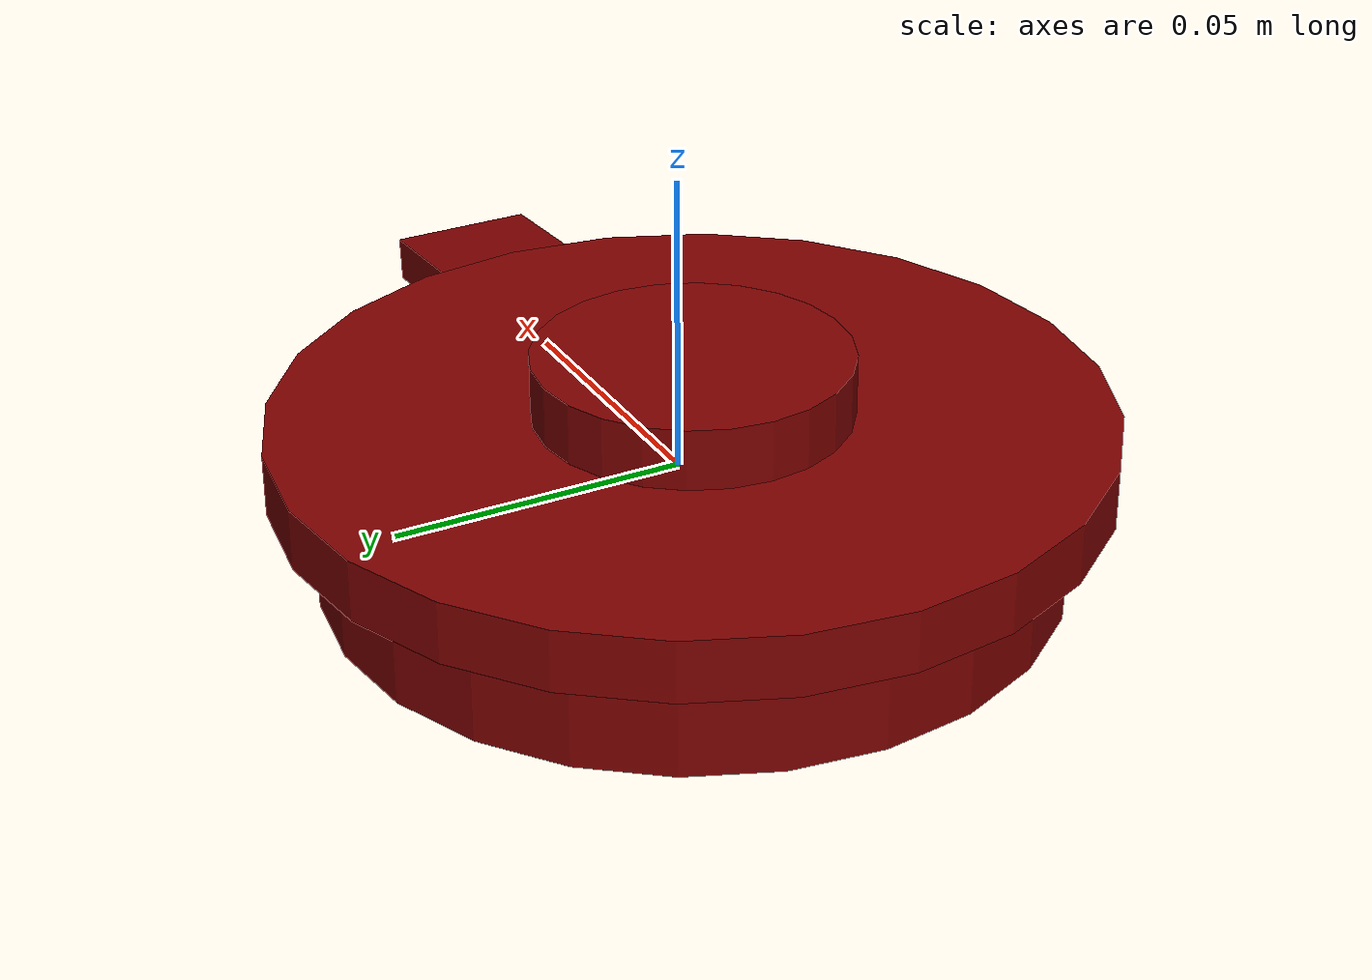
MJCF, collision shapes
<mujoco model="model">
  <option timestep="0.002" gravity="0.0 0.0 -9.81"/>
  <compiler angle="radian"/>
  <asset>
    <texture file="visuals/T_BC001.png" name="lid_material" type="2d"/>
    <material name="lid_material" rgba="1 1 1 1.0" texture="lid_material" shininess="0.4472135901451111" specular="0.3103448502657381"/>
    <mesh file="visuals/lid.obj" name="lid_vis"/>
  </asset>
  <default>
    <default class="visual">
      <geom conaffinity="0" contype="0" group="1" type="mesh"/>
    </default>
    <default class="collision">
      <geom group="0" rgba="0.5 0 0 0.5" solimp="0.95 0.99 0.003" solref="0.003 1"/>
    </default>
    <default class="spawn">
      <geom group="0" rgba="1 1 1 0.5" contype="0" conaffinity="0"/>
      <site group="0" rgba="1 1 1 0.5"/>
    </default>
    <default class="region">
      <geom group="1" conaffinity="0" contype="0" rgba="0 1 0 0"/>
    </default>
  </default>
  <worldbody>
    <body>
      <body name="object">
        <geom mesh="lid_vis" type="mesh" solimp="0.998 0.998 0.001" solref="0.001 1" friction="0.95 0.3 0.1" class="visual" material="lid_material"/>
        <geom class="collision" type="cylinder" pos="-0.004855678318701508 -7.242525191526739e-05 0.0070772560343172475" size="0.06867838650941849 0.005201192107051611" quat="1.0 0.0 0.0 0.0" density="1000.0"/>
        <geom class="collision" type="cylinder" pos="-0.004855678318701508 -7.242525191526739e-05 -0.0068" size="0.0614 0.009" quat="1.0 0.0 0.0 0.0" density="1000.0"/>
        <geom class="collision" name="handle_main" type="cylinder" pos="-0.004855682043991807 -7.242804588299123e-05 0.017411270926895372" size="0.02612263336777687 0.005131117068231106" quat="1.0 0.0 0.0 0.0" density="1000.0"/>
        <geom class="collision" type="box" pos="0.0625184933704512 0.0004950659143783537 0.006737420152130358" size="0.022866295650601387 0.01229377556592226 0.003732527606189251" quat="0.9993242025375366 -1.5204171522996543e-15 0.036758556962013245 4.9388284573126384e-09" density="1000.0"/>
        <geom class="region" name="reg_main" density="0" type="box" pos="0.0058908999999999975 -7.799999999988372e-07 0.0028235299999999994" size="0.080367 0.07210549999999999 0.018659500000000002"/>
      </body>
    </body>
  </worldbody>
</mujoco>
